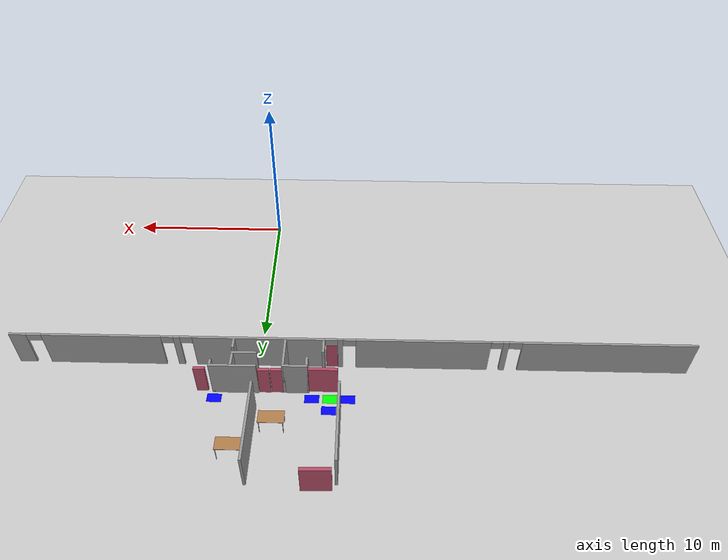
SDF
<sdf version="1.6">
 <world name="default">
  <model name="ground_plane">
   <pose>0 0 0.001 0 -0 0</pose>
   <static>1</static>
   <link name="link">
    <collision name="collision">
     <geometry><plane><normal>0 0 1</normal><size>100 100</size></plane></geometry>
     <surface><friction><ode><mu>100</mu><mu2>50</mu2></ode></friction></surface>
    </collision>
    <visual name="visual">
     <cast_shadows>0</cast_shadows>
     <geometry><plane><normal>0 0 1</normal><size>100 100</size></plane></geometry>
     <material>
      <script><uri>file://media/materials/scripts/gazebo.material</uri><name>Gazebo/Grey</name></script>
     </material>
    </visual>
   </link>
  </model>
  <model name="fin_se1f1.sdf">
   <pose>1.8125 -2.2901 0 0 -0 0</pose>
   <link name="Wall_109">
    <collision name="Wall_109_Collision">
     <geometry><box><size>2.75 0.15 2.5</size></box></geometry>
     <pose>0 0 1.25 0 -0 0</pose>
    </collision>
    <visual name="Wall_109_Visual">
     <pose>0 0 1.25 0 -0 0</pose>
     <geometry><box><size>2.75 0.15 2.5</size></box></geometry>
     <material>
      <script><uri>file://media/materials/scripts/gazebo.material</uri><name>Gazebo/Grey</name></script>
      <ambient>1 1 1 1</ambient>
     </material>
     <meta><layer>0</layer></meta>
    </visual>
    <pose>-0.574318 16.7244 0.001 0 -0 0</pose>
   </link>
   <link name="Wall_110">
    <collision name="Wall_110_Collision">
     <geometry><box><size>0.5 0.15 2.5</size></box></geometry>
     <pose>0 0 1.25 0 -0 0</pose>
    </collision>
    <visual name="Wall_110_Visual">
     <pose>0 0 1.25 0 -0 0</pose>
     <geometry><box><size>0.5 0.15 2.5</size></box></geometry>
     <material>
      <script><uri>file://media/materials/scripts/gazebo.material</uri><name>Gazebo/Grey</name></script>
      <ambient>1 1 1 1</ambient>
     </material>
     <meta><layer>0</layer></meta>
    </visual>
    <pose>0.725682 16.5494 0 0 0 -1.5708</pose>
   </link>
   <link name="Wall_132">
    <collision name="Wall_132_Collision">
     <geometry><box><size>0.75 0.15 2.5</size></box></geometry>
     <pose>0 0 1.25 0 -0 0</pose>
    </collision>
    <visual name="Wall_132_Visual">
     <pose>0 0 1.25 0 -0 0</pose>
     <geometry><box><size>0.75 0.15 2.5</size></box></geometry>
     <material>
      <script><uri>file://media/materials/scripts/gazebo.material</uri><name>Gazebo/Grey</name></script>
      <ambient>1 1 1 1</ambient>
     </material>
     <meta><layer>0</layer></meta>
    </visual>
    <pose>-4.81696 16.3807 0 0 -0 1.5708</pose>
   </link>
   <link name="Wall_133">
    <collision name="Wall_133_Collision">
     <geometry><box><size>1.5 0.15 2.5</size></box></geometry>
     <pose>0 0 1.25 0 -0 0</pose>
    </collision>
    <visual name="Wall_133_Visual">
     <pose>0 0 1.25 0 -0 0</pose>
     <geometry><box><size>1.5 0.15 2.5</size></box></geometry>
     <material>
      <script><uri>file://media/materials/scripts/gazebo.material</uri><name>Gazebo/Grey</name></script>
      <ambient>1 1 1 1</ambient>
     </material>
     <meta><layer>0</layer></meta>
    </visual>
    <pose>-4.14196 16.6807 0.001 0 -0 0</pose>
   </link>
   <link name="Wall_134">
    <collision name="Wall_134_Collision">
     <geometry><box><size>2 0.15 2.5</size></box></geometry>
     <pose>0 0 1.25 0 -0 0</pose>
    </collision>
    <visual name="Wall_134_Visual">
     <pose>0 0 1.25 0 -0 0</pose>
     <geometry><box><size>2 0.15 2.5</size></box></geometry>
     <material>
      <script><uri>file://media/materials/scripts/gazebo.material</uri><name>Gazebo/Grey</name></script>
      <ambient>1 1 1 1</ambient>
     </material>
     <meta><layer>0</layer></meta>
    </visual>
    <pose>-3.46696 15.7557 0 0 0 -1.5708</pose>
   </link>
   <link name="Wall_136">
    <collision name="Wall_136_Collision">
     <geometry><box><size>1 0.15 2.5</size></box></geometry>
     <pose>0 0 1.25 0 -0 0</pose>
    </collision>
    <visual name="Wall_136_Visual">
     <pose>0 0 1.25 0 -0 0</pose>
     <geometry><box><size>1 0.15 2.5</size></box></geometry>
     <material>
      <script><uri>file://media/materials/scripts/gazebo.material</uri><name>Gazebo/Grey</name></script>
      <ambient>1 1 1 1</ambient>
     </material>
     <meta><layer>0</layer></meta>
    </visual>
    <pose>-5.7265 15.1681 0 0 -0 1.5708</pose>
   </link>
   <link name="Wall_150">
    <collision name="Wall_150_Collision">
     <geometry><box><size>1.5 0.15 2.5</size></box></geometry>
     <pose>0 0 1.25 0 -0 0</pose>
    </collision>
    <visual name="Wall_150_Visual">
     <pose>0 0 1.25 0 -0 0</pose>
     <geometry><box><size>1.5 0.15 2.5</size></box></geometry>
     <material>
      <script><uri>file://media/materials/scripts/gazebo.material</uri><name>Gazebo/Grey</name></script>
      <ambient>1 1 1 1</ambient>
     </material>
     <meta><layer>0</layer></meta>
    </visual>
    <pose>-1.14582 15.7597 0.001 0 -0 0</pose>
   </link>
   <link name="Wall_151">
    <collision name="Wall_151_Collision">
     <geometry><box><size>1 0.15 2.5</size></box></geometry>
     <pose>0 0 1.25 0 -0 0</pose>
    </collision>
    <visual name="Wall_151_Visual">
     <pose>0 0 1.25 0 -0 0</pose>
     <geometry><box><size>1 0.15 2.5</size></box></geometry>
     <material>
      <script><uri>file://media/materials/scripts/gazebo.material</uri><name>Gazebo/Grey</name></script>
      <ambient>1 1 1 1</ambient>
     </material>
     <meta><layer>0</layer></meta>
    </visual>
    <pose>-0.470815 16.1847 0 0 -0 1.5708</pose>
   </link>
   <link name="Wall_153">
    <collision name="Wall_153_Collision">
     <geometry><box><size>0.75 0.15 2.5</size></box></geometry>
     <pose>0 0 1.25 0 -0 0</pose>
    </collision>
    <visual name="Wall_153_Visual">
     <pose>0 0 1.25 0 -0 0</pose>
     <geometry><box><size>0.75 0.15 2.5</size></box></geometry>
     <material>
      <script><uri>file://media/materials/scripts/gazebo.material</uri><name>Gazebo/Grey</name></script>
      <ambient>1 1 1 1</ambient>
     </material>
     <meta><layer>0</layer></meta>
    </visual>
    <pose>-0.42975 15.0316 0 0 0 -1.5708</pose>
   </link>
   <link name="Wall_78">
    <collision name="Wall_78_Collision">
     <geometry><box><size>5 0.15 2.5</size></box></geometry>
     <pose>0 0 1.25 0 -0 0</pose>
    </collision>
    <visual name="Wall_78_Visual">
     <pose>0 0 1.25 0 -0 0</pose>
     <geometry><box><size>5 0.15 2.5</size></box></geometry>
     <material>
      <script><uri>file://media/materials/scripts/gazebo.material</uri><name>Gazebo/Grey</name></script>
      <ambient>1 1 1 1</ambient>
     </material>
     <meta><layer>0</layer></meta>
    </visual>
    <pose>-1.81168 20.294 0 0 0 -1.5708</pose>
   </link>
   <link name="Wall_80">
    <collision name="Wall_80_Collision">
     <geometry><box><size>5 0.15 2.5</size></box></geometry>
     <pose>0 0 1.25 0 -0 0</pose>
    </collision>
    <visual name="Wall_80_Visual">
     <pose>0 0 1.25 0 -0 0</pose>
     <geometry><box><size>5 0.15 2.5</size></box></geometry>
     <material>
      <script><uri>file://media/materials/scripts/gazebo.material</uri><name>Gazebo/Grey</name></script>
      <ambient>1 1 1 1</ambient>
     </material>
     <meta><layer>0</layer></meta>
    </visual>
    <pose>-6.73391 20.1709 0 0 0 -1.5708</pose>
   </link>
   <link name="Wall_88">
    <pose>-7.32702 14.6896 0.001 0 -0 0</pose>
    <visual name="Wall_88_Visual_0">
     <pose>-15.144 0 1.25 0 -0 0</pose>
     <geometry><box><size>10.2121 0.15 2.5</size></box></geometry>
     <material>
      <script><uri>file://media/materials/scripts/gazebo.material</uri><name>Gazebo/Grey</name></script>
      <ambient>1 1 1 1</ambient>
     </material>
     <meta><layer>0</layer></meta>
    </visual>
    <collision name="Wall_88_Collision_0">
     <geometry><box><size>10.2121 0.15 2.5</size></box></geometry>
     <pose>-15.144 0 1.25 0 -0 0</pose>
    </collision>
    <visual name="Wall_88_Visual_1">
     <pose>-9.0851 0 1.25 0 -0 0</pose>
     <geometry><box><size>0.347043 0.15 2.5</size></box></geometry>
     <material>
      <script><uri>file://media/materials/scripts/gazebo.material</uri><name>Gazebo/Grey</name></script>
      <ambient>1 1 1 1</ambient>
     </material>
     <meta><layer>0</layer></meta>
    </visual>
    <collision name="Wall_88_Collision_1">
     <geometry><box><size>0.347043 0.15 2.5</size></box></geometry>
     <pose>-9.0851 0 1.25 0 -0 0</pose>
    </collision>
    <visual name="Wall_88_Visual_2">
     <pose>-4.24778 0 1.25 0 -0 0</pose>
     <geometry><box><size>7.92986 0.15 2.5</size></box></geometry>
     <material>
      <script><uri>file://media/materials/scripts/gazebo.material</uri><name>Gazebo/Grey</name></script>
      <ambient>1 1 1 1</ambient>
     </material>
     <meta><layer>0</layer></meta>
    </visual>
    <collision name="Wall_88_Collision_2">
     <geometry><box><size>7.92986 0.15 2.5</size></box></geometry>
     <pose>-4.24778 0 1.25 0 -0 0</pose>
    </collision>
    <visual name="Wall_88_Visual_3">
     <pose>0.644846 0 1.25 0 -0 0</pose>
     <geometry><box><size>0.296758 0.15 2.5</size></box></geometry>
     <material>
      <script><uri>file://media/materials/scripts/gazebo.material</uri><name>Gazebo/Grey</name></script>
      <ambient>1 1 1 1</ambient>
     </material>
     <meta><layer>0</layer></meta>
    </visual>
    <collision name="Wall_88_Collision_3">
     <geometry><box><size>0.296758 0.15 2.5</size></box></geometry>
     <pose>0.644846 0 1.25 0 -0 0</pose>
    </collision>
    <visual name="Wall_88_Visual_4">
     <pose>5.45199 0 1.25 0 -0 0</pose>
     <geometry><box><size>7.83935 0.15 2.5</size></box></geometry>
     <material>
      <script><uri>file://media/materials/scripts/gazebo.material</uri><name>Gazebo/Grey</name></script>
      <ambient>1 1 1 1</ambient>
     </material>
     <meta><layer>0</layer></meta>
    </visual>
    <collision name="Wall_88_Collision_4">
     <geometry><box><size>7.83935 0.15 2.5</size></box></geometry>
     <pose>5.45199 0 1.25 0 -0 0</pose>
    </collision>
    <visual name="Wall_88_Visual_5">
     <pose>10.3044 0 1.25 0 -0 0</pose>
     <geometry><box><size>0.387269 0.15 2.5</size></box></geometry>
     <material>
      <script><uri>file://media/materials/scripts/gazebo.material</uri><name>Gazebo/Grey</name></script>
      <ambient>1 1 1 1</ambient>
     </material>
     <meta><layer>0</layer></meta>
    </visual>
    <collision name="Wall_88_Collision_5">
     <geometry><box><size>0.387269 0.15 2.5</size></box></geometry>
     <pose>10.3044 0 1.25 0 -0 0</pose>
    </collision>
    <visual name="Wall_88_Visual_6">
     <pose>14.7797 0 1.25 0 -0 0</pose>
     <geometry><box><size>7.08509 0.15 2.5</size></box></geometry>
     <material>
      <script><uri>file://media/materials/scripts/gazebo.material</uri><name>Gazebo/Grey</name></script>
      <ambient>1 1 1 1</ambient>
     </material>
     <meta><layer>0</layer></meta>
    </visual>
    <collision name="Wall_88_Collision_6">
     <geometry><box><size>7.08509 0.15 2.5</size></box></geometry>
     <pose>14.7797 0 1.25 0 -0 0</pose>
    </collision>
    <visual name="Wall_88_Visual_7">
     <pose>19.7361 0 1.25 0 -0 0</pose>
     <geometry><box><size>1.0278 0.15 2.5</size></box></geometry>
     <material>
      <script><uri>file://media/materials/scripts/gazebo.material</uri><name>Gazebo/Grey</name></script>
      <ambient>1 1 1 1</ambient>
     </material>
     <meta><layer>0</layer></meta>
    </visual>
    <collision name="Wall_88_Collision_7">
     <geometry><box><size>1.0278 0.15 2.5</size></box></geometry>
     <pose>19.7361 0 1.25 0 -0 0</pose>
    </collision>
    <visual name="Wall_88_Visual_8">
     <pose>-9.64827 0 2.25 0 -0 0</pose>
     <geometry><box><size>0.779319 0.15 0.5</size></box></geometry>
     <material>
      <script><uri>file://media/materials/scripts/gazebo.material</uri><name>Gazebo/Grey</name></script>
      <ambient>1 1 1 1</ambient>
     </material>
     <meta><layer>0</layer></meta>
    </visual>
    <collision name="Wall_88_Collision_8">
     <geometry><box><size>0.779319 0.15 0.5</size></box></geometry>
     <pose>-9.64827 0 2.25 0 -0 0</pose>
    </collision>
    <visual name="Wall_88_Visual_9">
     <pose>-8.56214 0 2.25 0 -0 0</pose>
     <geometry><box><size>0.698864 0.15 0.5</size></box></geometry>
     <material>
      <script><uri>file://media/materials/scripts/gazebo.material</uri><name>Gazebo/Grey</name></script>
      <ambient>1 1 1 1</ambient>
     </material>
     <meta><layer>0</layer></meta>
    </visual>
    <collision name="Wall_88_Collision_9">
     <geometry><box><size>0.698864 0.15 0.5</size></box></geometry>
     <pose>-8.56214 0 2.25 0 -0 0</pose>
    </collision>
    <visual name="Wall_88_Visual_10">
     <pose>0.106808 0 2.25 0 -0 0</pose>
     <geometry><box><size>0.779319 0.15 0.5</size></box></geometry>
     <material>
      <script><uri>file://media/materials/scripts/gazebo.material</uri><name>Gazebo/Grey</name></script>
      <ambient>1 1 1 1</ambient>
     </material>
     <meta><layer>0</layer></meta>
    </visual>
    <collision name="Wall_88_Collision_10">
     <geometry><box><size>0.779319 0.15 0.5</size></box></geometry>
     <pose>0.106808 0 2.25 0 -0 0</pose>
    </collision>
    <visual name="Wall_88_Visual_11">
     <pose>1.16277 0 2.25 0 -0 0</pose>
     <geometry><box><size>0.739091 0.15 0.5</size></box></geometry>
     <material>
      <script><uri>file://media/materials/scripts/gazebo.material</uri><name>Gazebo/Grey</name></script>
      <ambient>1 1 1 1</ambient>
     </material>
     <meta><layer>0</layer></meta>
    </visual>
    <collision name="Wall_88_Collision_11">
     <geometry><box><size>0.739091 0.15 0.5</size></box></geometry>
     <pose>1.16277 0 2.25 0 -0 0</pose>
    </collision>
    <visual name="Wall_88_Visual_12">
     <pose>9.74121 0 2.25 0 -0 0</pose>
     <geometry><box><size>0.739091 0.15 0.5</size></box></geometry>
     <material>
      <script><uri>file://media/materials/scripts/gazebo.material</uri><name>Gazebo/Grey</name></script>
      <ambient>1 1 1 1</ambient>
     </material>
     <meta><layer>0</layer></meta>
    </visual>
    <collision name="Wall_88_Collision_12">
     <geometry><box><size>0.739091 0.15 0.5</size></box></geometry>
     <pose>9.74121 0 2.25 0 -0 0</pose>
    </collision>
    <visual name="Wall_88_Visual_13">
     <pose>10.8676 0 2.25 0 -0 0</pose>
     <geometry><box><size>0.739091 0.15 0.5</size></box></geometry>
     <material>
      <script><uri>file://media/materials/scripts/gazebo.material</uri><name>Gazebo/Grey</name></script>
      <ambient>1 1 1 1</ambient>
     </material>
     <meta><layer>0</layer></meta>
    </visual>
    <collision name="Wall_88_Collision_13">
     <geometry><box><size>0.739091 0.15 0.5</size></box></geometry>
     <pose>10.8676 0 2.25 0 -0 0</pose>
    </collision>
    <visual name="Wall_88_Visual_14">
     <pose>18.7722 0 2.25 0 -0 0</pose>
     <geometry><box><size>0.9 0.15 0.5</size></box></geometry>
     <material>
      <script><uri>file://media/materials/scripts/gazebo.material</uri><name>Gazebo/Grey</name></script>
      <ambient>1 1 1 1</ambient>
     </material>
     <meta><layer>0</layer></meta>
    </visual>
    <collision name="Wall_88_Collision_14">
     <geometry><box><size>0.9 0.15 0.5</size></box></geometry>
     <pose>18.7722 0 2.25 0 -0 0</pose>
    </collision>
   </link>
   <static>1</static>
  </model>
  <model name="table_6">
   <static>1</static>
   <link name="link">
    <collision name="surface">
     <pose>0 0 1 0 -0 0</pose>
     <geometry><box><size>1.5 0.8 0.03</size></box></geometry>
     <surface><friction><ode><mu>0.6</mu><mu2>0.6</mu2></ode></friction></surface>
    </collision>
    <visual name="visual1">
     <pose>0 0 1 0 -0 0</pose>
     <geometry><box><size>1.5 0.8 0.03</size></box></geometry>
     <material>
      <script><uri>file://media/materials/scripts/gazebo.material</uri><name>Gazebo/Wood</name></script>
     </material>
    </visual>
    <collision name="front_left_leg">
     <pose>0.68 0.38 0.5 0 -0 0</pose>
     <geometry><cylinder><radius>0.02</radius><length>1</length></cylinder></geometry>
    </collision>
    <visual name="front_left_leg">
     <pose>0.68 0.38 0.5 0 -0 0</pose>
     <geometry><cylinder><radius>0.02</radius><length>1</length></cylinder></geometry>
     <material>
      <script><uri>file://media/materials/scripts/gazebo.material</uri><name>Gazebo/Grey</name></script>
     </material>
    </visual>
    <collision name="front_right_leg">
     <pose>0.68 -0.38 0.5 0 -0 0</pose>
     <geometry><cylinder><radius>0.02</radius><length>1</length></cylinder></geometry>
    </collision>
    <visual name="front_right_leg">
     <pose>0.68 -0.38 0.5 0 -0 0</pose>
     <geometry><cylinder><radius>0.02</radius><length>1</length></cylinder></geometry>
     <material>
      <script><uri>file://media/materials/scripts/gazebo.material</uri><name>Gazebo/Grey</name></script>
     </material>
    </visual>
    <collision name="back_right_leg">
     <pose>-0.68 -0.38 0.5 0 -0 0</pose>
     <geometry><cylinder><radius>0.02</radius><length>1</length></cylinder></geometry>
    </collision>
    <visual name="back_right_leg">
     <pose>-0.68 -0.38 0.5 0 -0 0</pose>
     <geometry><cylinder><radius>0.02</radius><length>1</length></cylinder></geometry>
     <material>
      <script><uri>file://media/materials/scripts/gazebo.material</uri><name>Gazebo/Grey</name></script>
     </material>
    </visual>
    <collision name="back_left_leg">
     <pose>-0.68 0.38 0.5 0 -0 0</pose>
     <geometry><cylinder><radius>0.02</radius><length>1</length></cylinder></geometry>
    </collision>
    <visual name="back_left_leg">
     <pose>-0.68 0.38 0.5 0 -0 0</pose>
     <geometry><cylinder><radius>0.02</radius><length>1</length></cylinder></geometry>
     <material>
      <script><uri>file://media/materials/scripts/gazebo.material</uri><name>Gazebo/Grey</name></script>
     </material>
    </visual>
   </link>
   <pose>-1.13281 16.8336 0.001 0 -0 0</pose>
  </model>
  <model name="table_9">
   <static>1</static>
   <link name="link">
    <collision name="surface">
     <pose>0 0 1 0 -0 0</pose>
     <geometry><box><size>1.5 0.8 0.03</size></box></geometry>
     <surface><friction><ode><mu>0.6</mu><mu2>0.6</mu2></ode></friction></surface>
    </collision>
    <visual name="visual1">
     <pose>0 0 1 0 -0 0</pose>
     <geometry><box><size>1.5 0.8 0.03</size></box></geometry>
     <material>
      <script><uri>file://media/materials/scripts/gazebo.material</uri><name>Gazebo/Wood</name></script>
     </material>
    </visual>
    <collision name="front_left_leg">
     <pose>0.68 0.38 0.5 0 -0 0</pose>
     <geometry><cylinder><radius>0.02</radius><length>1</length></cylinder></geometry>
    </collision>
    <visual name="front_left_leg">
     <pose>0.68 0.38 0.5 0 -0 0</pose>
     <geometry><cylinder><radius>0.02</radius><length>1</length></cylinder></geometry>
     <material>
      <script><uri>file://media/materials/scripts/gazebo.material</uri><name>Gazebo/Grey</name></script>
     </material>
    </visual>
    <collision name="front_right_leg">
     <pose>0.68 -0.38 0.5 0 -0 0</pose>
     <geometry><cylinder><radius>0.02</radius><length>1</length></cylinder></geometry>
    </collision>
    <visual name="front_right_leg">
     <pose>0.68 -0.38 0.5 0 -0 0</pose>
     <geometry><cylinder><radius>0.02</radius><length>1</length></cylinder></geometry>
     <material>
      <script><uri>file://media/materials/scripts/gazebo.material</uri><name>Gazebo/Grey</name></script>
     </material>
    </visual>
    <collision name="back_right_leg">
     <pose>-0.68 -0.38 0.5 0 -0 0</pose>
     <geometry><cylinder><radius>0.02</radius><length>1</length></cylinder></geometry>
    </collision>
    <visual name="back_right_leg">
     <pose>-0.68 -0.38 0.5 0 -0 0</pose>
     <geometry><cylinder><radius>0.02</radius><length>1</length></cylinder></geometry>
     <material>
      <script><uri>file://media/materials/scripts/gazebo.material</uri><name>Gazebo/Grey</name></script>
     </material>
    </visual>
    <collision name="back_left_leg">
     <pose>-0.68 0.38 0.5 0 -0 0</pose>
     <geometry><cylinder><radius>0.02</radius><length>1</length></cylinder></geometry>
    </collision>
    <visual name="back_left_leg">
     <pose>-0.68 0.38 0.5 0 -0 0</pose>
     <geometry><cylinder><radius>0.02</radius><length>1</length></cylinder></geometry>
     <material>
      <script><uri>file://media/materials/scripts/gazebo.material</uri><name>Gazebo/Grey</name></script>
     </material>
    </visual>
   </link>
   <pose>1.02425 18.6007 0.001 0 -0 0</pose>
  </model>
  <model name="doorOutside_clone_3">
   <link name="link">
    <pose>0.155539 -0.366282 0.216958 0 -0 0</pose>
    <inertial>
     <mass>2.13199</mass>
     <inertia>
      <ixx>0.452656</ixx>
      <ixy>0</ixy>
      <ixz>0</ixz>
      <iyy>0.796738</iyy>
      <iyz>0</iyz>
      <izz>0.699414</izz>
     </inertia>
     <pose>0 0 0.001 0 -0 0</pose>
    </inertial>
    <visual name="visual">
     <geometry><box><size>1.71368 0.198843 2.05986</size></box></geometry>
     <material>
      <script><name>Gazebo/Grey</name><uri>file://media/materials/scripts/gazebo.material</uri></script>
      <ambient>0.7 0.3 0.4 1</ambient>
      <diffuse>0.7 0.7 0.7 1</diffuse>
      <specular>0.01 0.01 0.01 1</specular>
      <emissive>0 0 0 1</emissive>
      <shader type="vertex"><normal_map>__default__</normal_map></shader>
      <lighting>0</lighting>
     </material>
     <pose>0 0 0.001 0 -0 0</pose>
    </visual>
    <collision name="collision">
     <pose>0 0 0.001 0 -0 0</pose>
     <geometry><box><size>1.71368 0.198843 2.05986</size></box></geometry>
     <surface>
      <friction>
       <ode><mu>1</mu><mu2>1</mu2><fdir1>0 0 0</fdir1><slip1>0</slip1><slip2>0</slip2></ode>
       <torsional>
        <coefficient>1</coefficient>
        <patch_radius>0</patch_radius>
        <surface_radius>0</surface_radius>
        <use_patch_radius>1</use_patch_radius>
        <ode><slip>0</slip></ode>
       </torsional>
      </friction>
      <bounce><restitution_coefficient>0</restitution_coefficient><threshold>1e+06</threshold></bounce>
      <contact>
       <collide_without_contact>0</collide_without_contact>
       <collide_without_contact_bitmask>1</collide_without_contact_bitmask>
       <collide_bitmask>1</collide_bitmask>
       <ode>
        <soft_cfm>0</soft_cfm>
        <soft_erp>0.2</soft_erp>
        <kp>1e+13</kp>
        <kd>1</kd>
        <max_vel>0.01</max_vel>
        <min_depth>0</min_depth>
       </ode>
       <bullet>
        <split_impulse>1</split_impulse>
        <split_impulse_penetration_threshold>-0.01</split_impulse_penetration_threshold>
        <soft_cfm>0</soft_cfm>
        <soft_erp>0.2</soft_erp>
        <kp>1e+13</kp>
        <kd>1</kd>
       </bullet>
      </contact>
     </surface>
    </collision>
   </link>
   <static>1</static>
   <pose>-4.01851 21.012 0.812972 0 -0 0.023128</pose>
  </model>
  <model name="doorInside_7">
   <link name="link">
    <pose>0.712274 -0.220649 0.216958 0 -0 0</pose>
    <inertial>
     <mass>0.840612</mass>
     <inertia>
      <ixx>0.178476</ixx>
      <ixy>0</ixy>
      <ixz>0</ixz>
      <iyy>0.140406</iyy>
      <iyz>0</iyz>
      <izz>0.102032</izz>
     </inertia>
     <pose>0 0 0.001 0 -0 0</pose>
    </inertial>
    <visual name="visual">
     <geometry><box><size>0.675678 0.198843 2.05986</size></box></geometry>
     <material>
      <script><name>Gazebo/Grey</name><uri>file://media/materials/scripts/gazebo.material</uri></script>
      <ambient>0.7 0.3 0.4 1</ambient>
      <diffuse>0.7 0.7 0.7 1</diffuse>
      <specular>0.01 0.01 0.01 1</specular>
      <emissive>1 0 0 1</emissive>
      <shader type="vertex"><normal_map>__default__</normal_map></shader>
      <lighting>0</lighting>
     </material>
     <pose>0 0 0.001 0 -0 0</pose>
    </visual>
    <collision name="collision">
     <pose>0 0 0.001 0 -0 0</pose>
     <geometry><box><size>0.675678 0.198843 2.05986</size></box></geometry>
     <surface>
      <friction>
       <ode><mu>1</mu><mu2>1</mu2><fdir1>0 0 0</fdir1><slip1>0</slip1><slip2>0</slip2></ode>
       <torsional>
        <coefficient>1</coefficient>
        <patch_radius>0</patch_radius>
        <surface_radius>0</surface_radius>
        <use_patch_radius>1</use_patch_radius>
        <ode><slip>0</slip></ode>
       </torsional>
      </friction>
      <bounce><restitution_coefficient>0</restitution_coefficient><threshold>1e+06</threshold></bounce>
      <contact>
       <collide_without_contact>0</collide_without_contact>
       <collide_without_contact_bitmask>1</collide_without_contact_bitmask>
       <collide_bitmask>1</collide_bitmask>
       <ode>
        <soft_cfm>0</soft_cfm>
        <soft_erp>0.2</soft_erp>
        <kp>1e+13</kp>
        <kd>1</kd>
        <max_vel>0.01</max_vel>
        <min_depth>0</min_depth>
       </ode>
       <bullet>
        <split_impulse>1</split_impulse>
        <split_impulse_penetration_threshold>-0.01</split_impulse_penetration_threshold>
        <soft_cfm>0</soft_cfm>
        <soft_erp>0.2</soft_erp>
        <kp>1e+13</kp>
        <kd>1</kd>
       </bullet>
      </contact>
     </surface>
    </collision>
   </link>
   <static>0</static>
   <pose>-1.22109 14.5771 0.811968 0 -4e-06 -0.000304</pose>
  </model>
  <model name="doorInside_8">
   <link name="link">
    <pose>0.712274 -0.220649 0.216958 0 -0 0</pose>
    <inertial>
     <mass>0.840612</mass>
     <inertia>
      <ixx>0.178476</ixx>
      <ixy>0</ixy>
      <ixz>0</ixz>
      <iyy>0.140406</iyy>
      <iyz>0</iyz>
      <izz>0.102032</izz>
     </inertia>
     <pose>0 0 0.001 0 -0 0</pose>
    </inertial>
    <visual name="visual">
     <geometry><box><size>0.675678 0.198843 2.05986</size></box></geometry>
     <material>
      <script><name>Gazebo/Grey</name><uri>file://media/materials/scripts/gazebo.material</uri></script>
      <ambient>0.7 0.3 0.4 1</ambient>
      <diffuse>0.7 0.7 0.7 1</diffuse>
      <specular>0.01 0.01 0.01 1</specular>
      <emissive>1 0 0 1</emissive>
      <shader type="vertex"><normal_map>__default__</normal_map></shader>
      <lighting>0</lighting>
     </material>
     <pose>0 0 0.001 0 -0 0</pose>
    </visual>
    <collision name="collision">
     <pose>0 0 0.001 0 -0 0</pose>
     <geometry><box><size>0.675678 0.198843 2.05986</size></box></geometry>
     <surface>
      <friction>
       <ode><mu>1</mu><mu2>1</mu2><fdir1>0 0 0</fdir1><slip1>0</slip1><slip2>0</slip2></ode>
       <torsional>
        <coefficient>1</coefficient>
        <patch_radius>0</patch_radius>
        <surface_radius>0</surface_radius>
        <use_patch_radius>1</use_patch_radius>
        <ode><slip>0</slip></ode>
       </torsional>
      </friction>
      <bounce><restitution_coefficient>0</restitution_coefficient><threshold>1e+06</threshold></bounce>
      <contact>
       <collide_without_contact>0</collide_without_contact>
       <collide_without_contact_bitmask>1</collide_without_contact_bitmask>
       <collide_bitmask>1</collide_bitmask>
       <ode>
        <soft_cfm>0</soft_cfm>
        <soft_erp>0.2</soft_erp>
        <kp>1e+13</kp>
        <kd>1</kd>
        <max_vel>0.01</max_vel>
        <min_depth>0</min_depth>
       </ode>
       <bullet>
        <split_impulse>1</split_impulse>
        <split_impulse_penetration_threshold>-0.01</split_impulse_penetration_threshold>
        <soft_cfm>0</soft_cfm>
        <soft_erp>0.2</soft_erp>
        <kp>1e+13</kp>
        <kd>1</kd>
       </bullet>
      </contact>
     </surface>
    </collision>
   </link>
   <static>0</static>
   <pose>-1.95291 14.5567 0.811971 -0 -1e-06 0.000178</pose>
  </model>
  <model name="corridor_13">
   <link name="link">
    <pose>0 0 0.001 0 -0 0</pose>
    <inertial>
     <mass>0.0352517</mass>
     <inertia>
      <ixx>0.00099707</ixx>
      <ixy>0</ixy>
      <ixz>0</ixz>
      <iyy>0.00220147</iyy>
      <iyz>0</iyz>
      <izz>0.0031692</izz>
     </inertia>
     <pose>0 0 0.001 0 -0 0</pose>
    </inertial>
    <visual name="visual">
     <geometry><box><size>0.862743 0.578289 1e-06</size></box></geometry>
     <material>
      <script><name>Gazebo/Grey</name><uri>file://media/materials/scripts/gazebo.material</uri></script>
      <ambient>0 1 0 1</ambient>
      <diffuse>0 1 0 1</diffuse>
      <specular>0 1 0 1</specular>
      <emissive>0 1 0 1</emissive>
      <shader type="vertex"><normal_map>__default__</normal_map></shader>
     </material>
     <pose>0 0 0.001 0 -0 0</pose>
    </visual>
    <collision name="collision">
     <pose>0 0 0.001 0 -0 0</pose>
     <geometry><box><size>0.862743 0.578289 0.000477</size></box></geometry>
     <surface>
      <friction>
       <ode><mu>1</mu><mu2>1</mu2><fdir1>0 0 0</fdir1><slip1>0</slip1><slip2>0</slip2></ode>
       <torsional>
        <coefficient>1</coefficient>
        <patch_radius>0</patch_radius>
        <surface_radius>0</surface_radius>
        <use_patch_radius>1</use_patch_radius>
        <ode><slip>0</slip></ode>
       </torsional>
      </friction>
      <bounce><restitution_coefficient>0</restitution_coefficient><threshold>1e+06</threshold></bounce>
      <contact>
       <collide_without_contact>0</collide_without_contact>
       <collide_without_contact_bitmask>1</collide_without_contact_bitmask>
       <collide_bitmask>1</collide_bitmask>
       <ode>
        <soft_cfm>0</soft_cfm>
        <soft_erp>0.2</soft_erp>
        <kp>1e+13</kp>
        <kd>1</kd>
        <max_vel>0.01</max_vel>
        <min_depth>0</min_depth>
       </ode>
       <bullet>
        <split_impulse>1</split_impulse>
        <split_impulse_penetration_threshold>-0.01</split_impulse_penetration_threshold>
        <soft_cfm>0</soft_cfm>
        <soft_erp>0.2</soft_erp>
        <kp>1e+13</kp>
        <kd>1</kd>
       </bullet>
      </contact>
     </surface>
    </collision>
   </link>
   <static>1</static>
   <pose>-4.32256 14.8777 0 0 -0 0</pose>
  </model>
  <model name="intersection_23">
   <link name="link">
    <pose>0 0 0.001 0 -0 0</pose>
    <inertial>
     <mass>0.0352517</mass>
     <inertia>
      <ixx>0.000997067</ixx>
      <ixy>0</ixy>
      <ixz>0</ixz>
      <iyy>0.00220147</iyy>
      <iyz>0</iyz>
      <izz>0.0031692</izz>
     </inertia>
     <pose>0 0 0.001 0 -0 0</pose>
    </inertial>
    <visual name="visual">
     <geometry><box><size>0.862743 0.578289 1e-06</size></box></geometry>
     <material>
      <script><name>Gazebo/Grey</name><uri>file://media/materials/scripts/gazebo.material</uri></script>
      <ambient>0 0 1 1</ambient>
      <diffuse>0 0 1 1</diffuse>
      <specular>0 0 1 1</specular>
      <emissive>0 0 1 1</emissive>
      <shader type="vertex"><normal_map>__default__</normal_map></shader>
     </material>
     <pose>0 0 0.001 0 -0 0</pose>
    </visual>
    <collision name="collision">
     <pose>0 0 0.001 0 -0 0</pose>
     <geometry><box><size>0.862743 0.578289 0.000477</size></box></geometry>
     <surface>
      <friction>
       <ode><mu>1</mu><mu2>1</mu2><fdir1>0 0 0</fdir1><slip1>0</slip1><slip2>0</slip2></ode>
       <torsional>
        <coefficient>1</coefficient>
        <patch_radius>0</patch_radius>
        <surface_radius>0</surface_radius>
        <use_patch_radius>1</use_patch_radius>
        <ode><slip>0</slip></ode>
       </torsional>
      </friction>
      <bounce><restitution_coefficient>0</restitution_coefficient><threshold>1e+06</threshold></bounce>
      <contact>
       <collide_without_contact>0</collide_without_contact>
       <collide_without_contact_bitmask>1</collide_without_contact_bitmask>
       <collide_bitmask>1</collide_bitmask>
       <ode>
        <soft_cfm>0</soft_cfm>
        <soft_erp>0.2</soft_erp>
        <kp>1e+13</kp>
        <kd>1</kd>
        <max_vel>0.01</max_vel>
        <min_depth>0</min_depth>
       </ode>
       <bullet>
        <split_impulse>1</split_impulse>
        <split_impulse_penetration_threshold>-0.01</split_impulse_penetration_threshold>
        <soft_cfm>0</soft_cfm>
        <soft_erp>0.2</soft_erp>
        <kp>1e+13</kp>
        <kd>1</kd>
       </bullet>
      </contact>
     </surface>
    </collision>
   </link>
   <static>1</static>
   <pose>-4.28702 15.6828 0 0 -0 0</pose>
  </model>
  <model name="doorInside_9">
   <link name="link">
    <pose>0.712274 -0.220649 0.216958 0 -0 0</pose>
    <inertial>
     <mass>0.840612</mass>
     <inertia>
      <ixx>0.178476</ixx>
      <ixy>0</ixy>
      <ixz>0</ixz>
      <iyy>0.140406</iyy>
      <iyz>0</iyz>
      <izz>0.102032</izz>
     </inertia>
     <pose>0 0 0.001 0 -0 0</pose>
    </inertial>
    <visual name="visual">
     <geometry><box><size>0.675678 0.198843 2.05986</size></box></geometry>
     <material>
      <script><name>Gazebo/Grey</name><uri>file://media/materials/scripts/gazebo.material</uri></script>
      <ambient>0.7 0.3 0.4 1</ambient>
      <diffuse>0.7 0.7 0.7 1</diffuse>
      <specular>0.01 0.01 0.01 1</specular>
      <emissive>1 0 0 1</emissive>
      <shader type="vertex"><normal_map>__default__</normal_map></shader>
      <lighting>0</lighting>
     </material>
     <pose>0 0 0.001 0 -0 0</pose>
    </visual>
    <collision name="collision">
     <pose>0 0 0.001 0 -0 0</pose>
     <geometry><box><size>0.675678 0.198843 2.05986</size></box></geometry>
     <surface>
      <friction>
       <ode><mu>1</mu><mu2>1</mu2><fdir1>0 0 0</fdir1><slip1>0</slip1><slip2>0</slip2></ode>
       <torsional>
        <coefficient>1</coefficient>
        <patch_radius>0</patch_radius>
        <surface_radius>0</surface_radius>
        <use_patch_radius>1</use_patch_radius>
        <ode><slip>0</slip></ode>
       </torsional>
      </friction>
      <bounce><restitution_coefficient>0</restitution_coefficient><threshold>1e+06</threshold></bounce>
      <contact>
       <collide_without_contact>0</collide_without_contact>
       <collide_without_contact_bitmask>1</collide_without_contact_bitmask>
       <collide_bitmask>1</collide_bitmask>
       <ode>
        <soft_cfm>0</soft_cfm>
        <soft_erp>0.2</soft_erp>
        <kp>1e+13</kp>
        <kd>1</kd>
        <max_vel>0.01</max_vel>
        <min_depth>0</min_depth>
       </ode>
       <bullet>
        <split_impulse>1</split_impulse>
        <split_impulse_penetration_threshold>-0.01</split_impulse_penetration_threshold>
        <soft_cfm>0</soft_cfm>
        <soft_erp>0.2</soft_erp>
        <kp>1e+13</kp>
        <kd>1</kd>
       </bullet>
      </contact>
     </surface>
    </collision>
   </link>
   <static>0</static>
   <pose>-5.0801 12.5242 0.831526 0.066803 -1e-06 0</pose>
  </model>
  <model name="intersection_5">
   <link name="link">
    <pose>0 0 0.001 0 -0 0</pose>
    <inertial>
     <mass>0.0352517</mass>
     <inertia>
      <ixx>0.000997067</ixx>
      <ixy>0</ixy>
      <ixz>0</ixz>
      <iyy>0.00220147</iyy>
      <iyz>0</iyz>
      <izz>0.0031692</izz>
     </inertia>
     <pose>0 0 0.001 0 -0 0</pose>
    </inertial>
    <visual name="visual">
     <geometry><box><size>0.862743 0.578289 1e-06</size></box></geometry>
     <material>
      <script><name>Gazebo/Grey</name><uri>file://media/materials/scripts/gazebo.material</uri></script>
      <ambient>0 0 1 1</ambient>
      <diffuse>0 0 1 1</diffuse>
      <specular>0 0 1 1</specular>
      <emissive>0 0 1 1</emissive>
      <shader type="vertex"><normal_map>__default__</normal_map></shader>
     </material>
     <pose>0 0 0.001 0 -0 0</pose>
    </visual>
    <collision name="collision">
     <pose>0 0 0.001 0 -0 0</pose>
     <geometry><box><size>0.862743 0.578289 0.000477</size></box></geometry>
     <surface>
      <friction>
       <ode><mu>1</mu><mu2>1</mu2><fdir1>0 0 0</fdir1><slip1>0</slip1><slip2>0</slip2></ode>
       <torsional>
        <coefficient>1</coefficient>
        <patch_radius>0</patch_radius>
        <surface_radius>0</surface_radius>
        <use_patch_radius>1</use_patch_radius>
        <ode><slip>0</slip></ode>
       </torsional>
      </friction>
      <bounce><restitution_coefficient>0</restitution_coefficient><threshold>1e+06</threshold></bounce>
      <contact>
       <collide_without_contact>0</collide_without_contact>
       <collide_without_contact_bitmask>1</collide_without_contact_bitmask>
       <collide_bitmask>1</collide_bitmask>
       <ode>
        <soft_cfm>0</soft_cfm>
        <soft_erp>0.2</soft_erp>
        <kp>1e+13</kp>
        <kd>1</kd>
        <max_vel>0.01</max_vel>
        <min_depth>0</min_depth>
       </ode>
       <bullet>
        <split_impulse>1</split_impulse>
        <split_impulse_penetration_threshold>-0.01</split_impulse_penetration_threshold>
        <soft_cfm>0</soft_cfm>
        <soft_erp>0.2</soft_erp>
        <kp>1e+13</kp>
        <kd>1</kd>
       </bullet>
      </contact>
     </surface>
    </collision>
   </link>
   <static>1</static>
   <pose>-5.38522 14.8844 0 0 -0 0</pose>
  </model>
  <model name="intersection_6">
   <link name="link">
    <pose>0 0 0.001 0 -0 0</pose>
    <inertial>
     <mass>0.0352517</mass>
     <inertia>
      <ixx>0.000997067</ixx>
      <ixy>0</ixy>
      <ixz>0</ixz>
      <iyy>0.00220147</iyy>
      <iyz>0</iyz>
      <izz>0.0031692</izz>
     </inertia>
     <pose>0 0 0.001 0 -0 0</pose>
    </inertial>
    <visual name="visual">
     <geometry><box><size>0.862743 0.578289 1e-06</size></box></geometry>
     <material>
      <script><name>Gazebo/Grey</name><uri>file://media/materials/scripts/gazebo.material</uri></script>
      <ambient>0 0 1 1</ambient>
      <diffuse>0 0 1 1</diffuse>
      <specular>0 0 1 1</specular>
      <emissive>0 0 1 1</emissive>
      <shader type="vertex"><normal_map>__default__</normal_map></shader>
     </material>
     <pose>0 0 0.001 0 -0 0</pose>
    </visual>
    <collision name="collision">
     <pose>0 0 0.001 0 -0 0</pose>
     <geometry><box><size>0.862743 0.578289 0.000477</size></box></geometry>
     <surface>
      <friction>
       <ode><mu>1</mu><mu2>1</mu2><fdir1>0 0 0</fdir1><slip1>0</slip1><slip2>0</slip2></ode>
       <torsional>
        <coefficient>1</coefficient>
        <patch_radius>0</patch_radius>
        <surface_radius>0</surface_radius>
        <use_patch_radius>1</use_patch_radius>
        <ode><slip>0</slip></ode>
       </torsional>
      </friction>
      <bounce><restitution_coefficient>0</restitution_coefficient><threshold>1e+06</threshold></bounce>
      <contact>
       <collide_without_contact>0</collide_without_contact>
       <collide_without_contact_bitmask>1</collide_without_contact_bitmask>
       <collide_bitmask>1</collide_bitmask>
       <ode>
        <soft_cfm>0</soft_cfm>
        <soft_erp>0.2</soft_erp>
        <kp>1e+13</kp>
        <kd>1</kd>
        <max_vel>0.01</max_vel>
        <min_depth>0</min_depth>
       </ode>
       <bullet>
        <split_impulse>1</split_impulse>
        <split_impulse_penetration_threshold>-0.01</split_impulse_penetration_threshold>
        <soft_cfm>0</soft_cfm>
        <soft_erp>0.2</soft_erp>
        <kp>1e+13</kp>
        <kd>1</kd>
       </bullet>
      </contact>
     </surface>
    </collision>
   </link>
   <static>1</static>
   <pose>-3.264 14.8868 0 0 -0 0</pose>
  </model>
  <model name="doorOutside_1">
   <link name="link">
    <pose>0.155539 -0.366282 0.216958 0 -0 0</pose>
    <inertial>
     <mass>2.13199</mass>
     <inertia>
      <ixx>0.452656</ixx>
      <ixy>0</ixy>
      <ixz>0</ixz>
      <iyy>0.796738</iyy>
      <iyz>0</iyz>
      <izz>0.699414</izz>
     </inertia>
    </inertial>
    <visual name="visual">
     <geometry><box><size>1.71368 0.198843 2.05986</size></box></geometry>
     <material>
      <script><name>Gazebo/Grey</name><uri>file://media/materials/scripts/gazebo.material</uri></script>
      <ambient>0.7 0.3 0.4 1</ambient>
      <diffuse>0.7 0.7 0.7 1</diffuse>
      <specular>0.01 0.01 0.01 1</specular>
      <emissive>0 0 0 1</emissive>
      <shader type="vertex"><normal_map>__default__</normal_map></shader>
      <lighting>0</lighting>
     </material>
    </visual>
    <collision name="collision">
     <geometry><box><size>1.71368 0.198843 2.05986</size></box></geometry>
     <surface>
      <friction>
       <ode><mu>1</mu><mu2>1</mu2><fdir1>0 0 0</fdir1><slip1>0</slip1><slip2>0</slip2></ode>
       <torsional>
        <coefficient>1</coefficient>
        <patch_radius>0</patch_radius>
        <surface_radius>0</surface_radius>
        <use_patch_radius>1</use_patch_radius>
        <ode><slip>0</slip></ode>
       </torsional>
      </friction>
      <bounce><restitution_coefficient>0</restitution_coefficient><threshold>1e+06</threshold></bounce>
      <contact>
       <collide_without_contact>0</collide_without_contact>
       <collide_without_contact_bitmask>1</collide_without_contact_bitmask>
       <collide_bitmask>1</collide_bitmask>
       <ode>
        <soft_cfm>0</soft_cfm>
        <soft_erp>0.2</soft_erp>
        <kp>1e+13</kp>
        <kd>1</kd>
        <max_vel>0.01</max_vel>
        <min_depth>0</min_depth>
       </ode>
       <bullet>
        <split_impulse>1</split_impulse>
        <split_impulse_penetration_threshold>-0.01</split_impulse_penetration_threshold>
        <soft_cfm>0</soft_cfm>
        <soft_erp>0.2</soft_erp>
        <kp>1e+13</kp>
        <kd>1</kd>
       </bullet>
      </contact>
     </surface>
    </collision>
   </link>
   <static>0</static>
   <pose>-4.09214 14.6056 0.812968 -2e-06 6e-06 0.000233</pose>
  </model>
  <model name="doorInside_17">
   <link name="link">
    <pose>0.712274 -0.220649 0.216958 0 -0 0</pose>
    <inertial>
     <mass>0.840612</mass>
     <inertia>
      <ixx>0.178476</ixx>
      <ixy>0</ixy>
      <ixz>0</ixz>
      <iyy>0.140406</iyy>
      <iyz>0</iyz>
      <izz>0.102032</izz>
     </inertia>
    </inertial>
    <visual name="visual">
     <geometry><box><size>0.675678 0.198843 2.05986</size></box></geometry>
     <material>
      <script><name>Gazebo/Grey</name><uri>file://media/materials/scripts/gazebo.material</uri></script>
      <ambient>0.7 0.3 0.4 1</ambient>
      <diffuse>0.7 0.7 0.7 1</diffuse>
      <specular>0.01 0.01 0.01 1</specular>
      <emissive>1 0 0 1</emissive>
      <shader type="vertex"><normal_map>__default__</normal_map></shader>
      <lighting>0</lighting>
     </material>
    </visual>
    <collision name="collision">
     <geometry><box><size>0.675678 0.198843 2.05986</size></box></geometry>
     <surface>
      <friction>
       <ode><mu>1</mu><mu2>1</mu2><fdir1>0 0 0</fdir1><slip1>0</slip1><slip2>0</slip2></ode>
       <torsional>
        <coefficient>1</coefficient>
        <patch_radius>0</patch_radius>
        <surface_radius>0</surface_radius>
        <use_patch_radius>1</use_patch_radius>
        <ode><slip>0</slip></ode>
       </torsional>
      </friction>
      <bounce><restitution_coefficient>0</restitution_coefficient><threshold>1e+06</threshold></bounce>
      <contact>
       <collide_without_contact>0</collide_without_contact>
       <collide_without_contact_bitmask>1</collide_without_contact_bitmask>
       <collide_bitmask>1</collide_bitmask>
       <ode>
        <soft_cfm>0</soft_cfm>
        <soft_erp>0.2</soft_erp>
        <kp>1e+13</kp>
        <kd>1</kd>
        <max_vel>0.01</max_vel>
        <min_depth>0</min_depth>
       </ode>
       <bullet>
        <split_impulse>1</split_impulse>
        <split_impulse_penetration_threshold>-0.01</split_impulse_penetration_threshold>
        <soft_cfm>0</soft_cfm>
        <soft_erp>0.2</soft_erp>
        <kp>1e+13</kp>
        <kd>1</kd>
       </bullet>
      </contact>
     </surface>
    </collision>
   </link>
   <static>0</static>
   <pose>2.49376 14.5389 0.812973 0 1e-06 -0.000265</pose>
  </model>
  <model name="intersection_57">
   <link name="link">
    <pose>0 0 0.001 0 -0 0</pose>
    <inertial>
     <mass>0.0352517</mass>
     <inertia>
      <ixx>0.000997067</ixx>
      <ixy>0</ixy>
      <ixz>0</ixz>
      <iyy>0.00220147</iyy>
      <iyz>0</iyz>
      <izz>0.0031692</izz>
     </inertia>
     <pose>0 0 0.001 0 -0 0</pose>
    </inertial>
    <visual name="visual">
     <geometry><box><size>0.862743 0.578289 1e-06</size></box></geometry>
     <material>
      <script><name>Gazebo/Grey</name><uri>file://media/materials/scripts/gazebo.material</uri></script>
      <ambient>0 0 1 1</ambient>
      <diffuse>0 0 1 1</diffuse>
      <specular>0 0 1 1</specular>
      <emissive>0 0 1 1</emissive>
      <shader type="vertex"><normal_map>__default__</normal_map></shader>
     </material>
     <pose>0 0 0.001 0 -0 0</pose>
    </visual>
    <collision name="collision">
     <pose>0 0 0.001 0 -0 0</pose>
     <geometry><box><size>0.862743 0.578289 0.000477</size></box></geometry>
     <surface>
      <friction>
       <ode><mu>1</mu><mu2>1</mu2><fdir1>0 0 0</fdir1><slip1>0</slip1><slip2>0</slip2></ode>
       <torsional>
        <coefficient>1</coefficient>
        <patch_radius>0</patch_radius>
        <surface_radius>0</surface_radius>
        <use_patch_radius>1</use_patch_radius>
        <ode><slip>0</slip></ode>
       </torsional>
      </friction>
      <bounce><restitution_coefficient>0</restitution_coefficient><threshold>1e+06</threshold></bounce>
      <contact>
       <collide_without_contact>0</collide_without_contact>
       <collide_without_contact_bitmask>1</collide_without_contact_bitmask>
       <collide_bitmask>1</collide_bitmask>
       <ode>
        <soft_cfm>0</soft_cfm>
        <soft_erp>0.2</soft_erp>
        <kp>1e+13</kp>
        <kd>1</kd>
        <max_vel>0.01</max_vel>
        <min_depth>0</min_depth>
       </ode>
       <bullet>
        <split_impulse>1</split_impulse>
        <split_impulse_penetration_threshold>-0.01</split_impulse_penetration_threshold>
        <soft_cfm>0</soft_cfm>
        <soft_erp>0.2</soft_erp>
        <kp>1e+13</kp>
        <kd>1</kd>
       </bullet>
      </contact>
     </surface>
    </collision>
   </link>
   <static>1</static>
   <pose>2.47585 14.9275 0 0 -0 0</pose>
  </model>
 </world>
</sdf>
